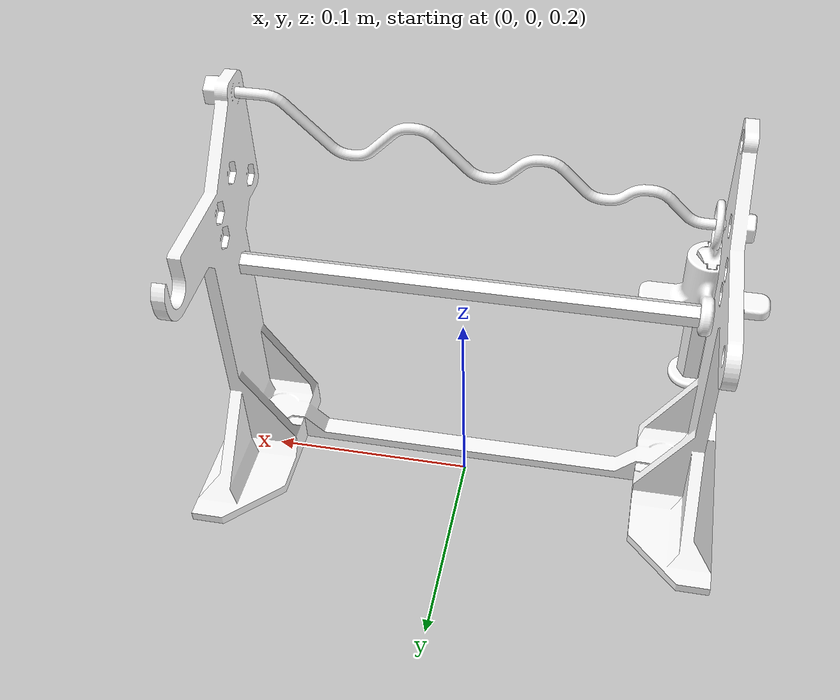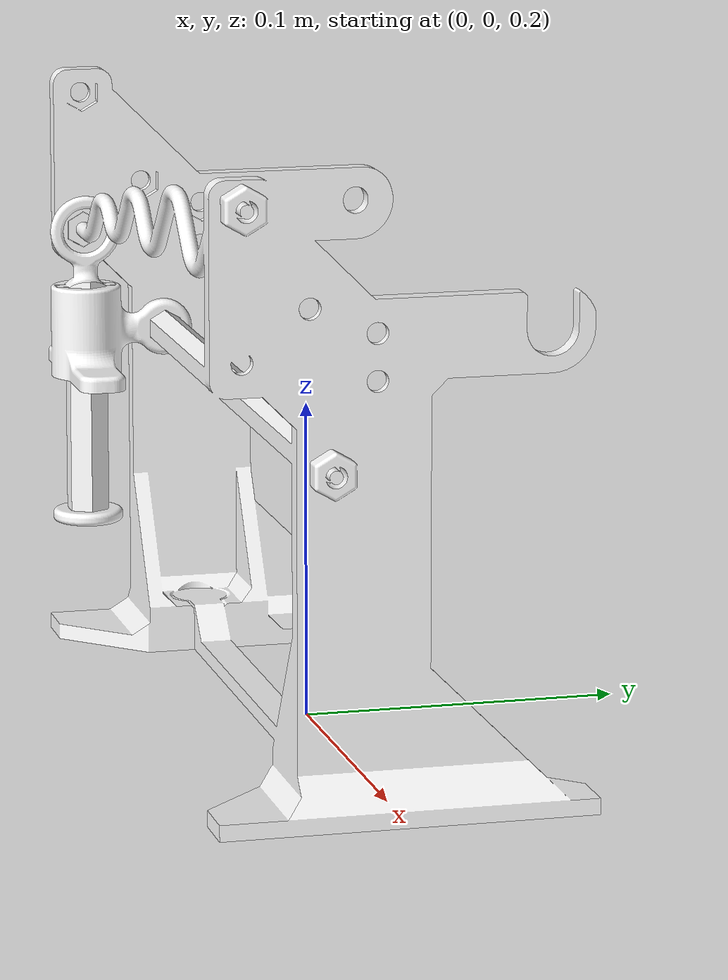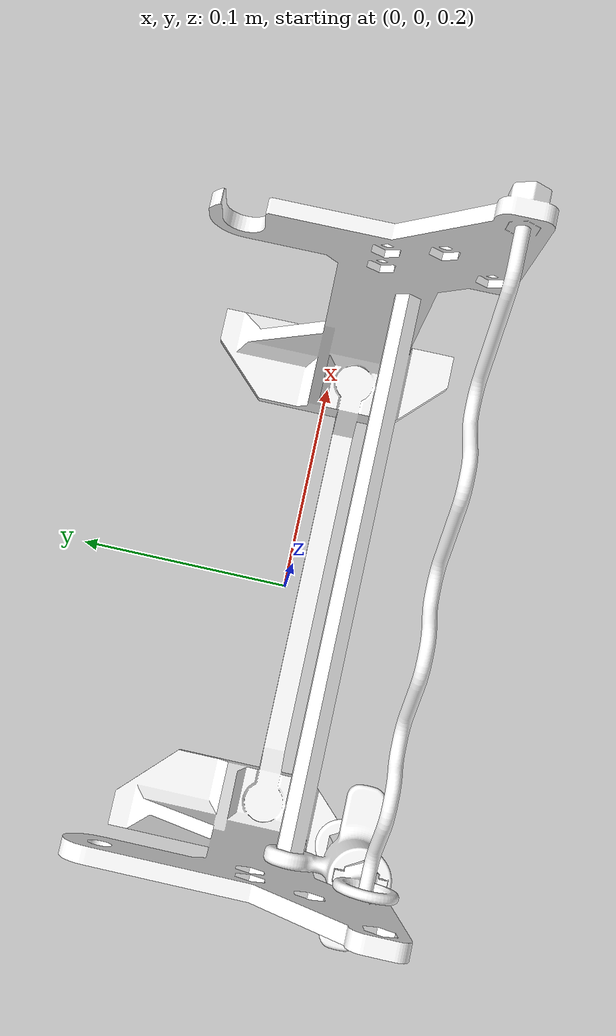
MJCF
<mujoco model="H3_Squeeze">

  <asset>
    <mesh name="i11_horizontal_base" file="i11_horizontal_base.stl" scale="1 1 1"/>
    <mesh name="i11_traj_convex_part_0" file="i11_traj_decomposed_meshes/i11_traj_convex_part_0.obj" scale="1 1 1"/>
    <mesh name="i11_traj_convex_part_1" file="i11_traj_decomposed_meshes/i11_traj_convex_part_1.obj" scale="1 1 1"/>
    <mesh name="i11_traj_convex_part_2" file="i11_traj_decomposed_meshes/i11_traj_convex_part_2.obj" scale="1 1 1"/>
    <mesh name="i11_traj_convex_part_3" file="i11_traj_decomposed_meshes/i11_traj_convex_part_3.obj" scale="1 1 1"/>
    <mesh name="i11_traj_convex_part_4" file="i11_traj_decomposed_meshes/i11_traj_convex_part_4.obj" scale="1 1 1"/>
    <mesh name="i11_traj_convex_part_5" file="i11_traj_decomposed_meshes/i11_traj_convex_part_5.obj" scale="1 1 1"/>
    <mesh name="i11_traj_convex_part_6" file="i11_traj_decomposed_meshes/i11_traj_convex_part_6.obj" scale="1 1 1"/>
    <mesh name="i11_traj_convex_part_7" file="i11_traj_decomposed_meshes/i11_traj_convex_part_7.obj" scale="1 1 1"/>
    <mesh name="i11_traj_convex_part_8" file="i11_traj_decomposed_meshes/i11_traj_convex_part_8.obj" scale="1 1 1"/>
    <mesh name="i11_traj_convex_part_9" file="i11_traj_decomposed_meshes/i11_traj_convex_part_9.obj" scale="1 1 1"/>
    <mesh name="i11_traj_convex_part_10" file="i11_traj_decomposed_meshes/i11_traj_convex_part_10.obj" scale="1 1 1"/>
    <mesh name="i11_traj_convex_part_11" file="i11_traj_decomposed_meshes/i11_traj_convex_part_11.obj" scale="1 1 1"/>
    <mesh name="i11_traj_convex_part_12" file="i11_traj_decomposed_meshes/i11_traj_convex_part_12.obj" scale="1 1 1"/>
    <mesh name="i11_traj_convex_part_13" file="i11_traj_decomposed_meshes/i11_traj_convex_part_13.obj" scale="1 1 1"/>
    <mesh name="i11_traj_convex_part_14" file="i11_traj_decomposed_meshes/i11_traj_convex_part_14.obj" scale="1 1 1"/>
    <mesh name="i11_traj_convex_part_15" file="i11_traj_decomposed_meshes/i11_traj_convex_part_15.obj" scale="1 1 1"/>
    <mesh name="i11_traj_convex_part_16" file="i11_traj_decomposed_meshes/i11_traj_convex_part_16.obj" scale="1 1 1"/>
    <mesh name="i11_traj_convex_part_17" file="i11_traj_decomposed_meshes/i11_traj_convex_part_17.obj" scale="1 1 1"/>
    <mesh name="i11_traj_convex_part_18" file="i11_traj_decomposed_meshes/i11_traj_convex_part_18.obj" scale="1 1 1"/>

    <mesh name="syringe_barrier" file="syringe_barrier.stl" scale="1 1 1"/>
    <mesh name="syringe_rod" file="syringe_rod.stl" scale="1 1 1"/>

    <mesh name="i11_ring_convex_part_0" file="i11_ring_decomposed_meshes/i11_ring_convex_part_0.obj" scale="1 1 1"/>
    <mesh name="i11_ring_convex_part_1" file="i11_ring_decomposed_meshes/i11_ring_convex_part_1.obj" scale="1 1 1"/>
    <mesh name="i11_ring_convex_part_2" file="i11_ring_decomposed_meshes/i11_ring_convex_part_2.obj" scale="1 1 1"/>
    <mesh name="i11_ring_convex_part_3" file="i11_ring_decomposed_meshes/i11_ring_convex_part_3.obj" scale="1 1 1"/>
    <mesh name="i11_ring_convex_part_4" file="i11_ring_decomposed_meshes/i11_ring_convex_part_4.obj" scale="1 1 1"/>
    <mesh name="i11_ring_convex_part_5" file="i11_ring_decomposed_meshes/i11_ring_convex_part_5.obj" scale="1 1 1"/>
    <mesh name="i11_ring_convex_part_6" file="i11_ring_decomposed_meshes/i11_ring_convex_part_6.obj" scale="1 1 1"/>
    <mesh name="i11_ring_convex_part_7" file="i11_ring_decomposed_meshes/i11_ring_convex_part_7.obj" scale="1 1 1"/>
    <mesh name="i11_ring_convex_part_8" file="i11_ring_decomposed_meshes/i11_ring_convex_part_8.obj" scale="1 1 1"/>
    <mesh name="i11_ring_convex_part_9" file="i11_ring_decomposed_meshes/i11_ring_convex_part_9.obj" scale="1 1 1"/>
    <mesh name="i11_ring_convex_part_10" file="i11_ring_decomposed_meshes/i11_ring_convex_part_10.obj" scale="1 1 1"/>
    <mesh name="i11_ring_convex_part_11" file="i11_ring_decomposed_meshes/i11_ring_convex_part_11.obj" scale="1 1 1"/>
    <mesh name="i11_ring_convex_part_12" file="i11_ring_decomposed_meshes/i11_ring_convex_part_12.obj" scale="1 1 1"/>
    <mesh name="i11_ring_convex_part_13" file="i11_ring_decomposed_meshes/i11_ring_convex_part_13.obj" scale="1 1 1"/>
    <mesh name="i11_ring_convex_part_14" file="i11_ring_decomposed_meshes/i11_ring_convex_part_14.obj" scale="1 1 1"/>
    <mesh name="i11_ring_convex_part_15" file="i11_ring_decomposed_meshes/i11_ring_convex_part_15.obj" scale="1 1 1"/>
    <mesh name="i11_ring_convex_part_16" file="i11_ring_decomposed_meshes/i11_ring_convex_part_16.obj" scale="1 1 1"/>
    <mesh name="i11_ring_convex_part_17" file="i11_ring_decomposed_meshes/i11_ring_convex_part_17.obj" scale="1 1 1"/>
    <mesh name="i11_ring_convex_part_18" file="i11_ring_decomposed_meshes/i11_ring_convex_part_18.obj" scale="1 1 1"/>
    <mesh name="i11_ring_convex_part_19" file="i11_ring_decomposed_meshes/i11_ring_convex_part_19.obj" scale="1 1 1"/>
    <mesh name="i11_ring_convex_part_20" file="i11_ring_decomposed_meshes/i11_ring_convex_part_20.obj" scale="1 1 1"/>
    <mesh name="i11_ring_convex_part_21" file="i11_ring_decomposed_meshes/i11_ring_convex_part_21.obj" scale="1 1 1"/>
    <mesh name="i11_ring_convex_part_22" file="i11_ring_decomposed_meshes/i11_ring_convex_part_22.obj" scale="1 1 1"/>
    <mesh name="i11_ring_convex_part_23" file="i11_ring_decomposed_meshes/i11_ring_convex_part_23.obj" scale="1 1 1"/>
    <mesh name="i11_ring_convex_part_24" file="i11_ring_decomposed_meshes/i11_ring_convex_part_24.obj" scale="1 1 1"/>
    <mesh name="i11_ring_convex_part_25" file="i11_ring_decomposed_meshes/i11_ring_convex_part_25.obj" scale="1 1 1"/>
    <mesh name="i11_ring_convex_part_26" file="i11_ring_decomposed_meshes/i11_ring_convex_part_26.obj" scale="1 1 1"/>
    <mesh name="i11_ring_convex_part_27" file="i11_ring_decomposed_meshes/i11_ring_convex_part_27.obj" scale="1 1 1"/>
    <mesh name="i11_ring_convex_part_28" file="i11_ring_decomposed_meshes/i11_ring_convex_part_28.obj" scale="1 1 1"/>
    <mesh name="i11_ring_convex_part_29" file="i11_ring_decomposed_meshes/i11_ring_convex_part_29.obj" scale="1 1 1"/>
    <mesh name="i11_ring_convex_part_30" file="i11_ring_decomposed_meshes/i11_ring_convex_part_30.obj" scale="1 1 1"/>
    <mesh name="i11_ring_convex_part_31" file="i11_ring_decomposed_meshes/i11_ring_convex_part_31.obj" scale="1 1 1"/>
    <mesh name="i11_ring_convex_part_32" file="i11_ring_decomposed_meshes/i11_ring_convex_part_32.obj" scale="1 1 1"/>
    <mesh name="i11_ring_convex_part_33" file="i11_ring_decomposed_meshes/i11_ring_convex_part_33.obj" scale="1 1 1"/>
    <mesh name="i11_ring_convex_part_34" file="i11_ring_decomposed_meshes/i11_ring_convex_part_34.obj" scale="1 1 1"/>

    <material name="object_material" rgba="1 1 1 1" shininess="0.3"/>
  </asset>

  <default>
    <default class="visual">
      <geom contype="0" conaffinity="0" group="2"/>
    </default>
    <default class="collision">
      <geom group="3"/>
    </default>
  </default>

  <worldbody>
    <body name="i11_horizontal_base_body" pos="0 0 0.2">
      <geom name="i11_horizontal_base" type="mesh" mesh="i11_horizontal_base" material="object_material" mass="1" class="visual"/>
      <geom type="box" size="0.003 0.020 0.0775" pos="-0.1155 -0.0118 0.0775" density="248" class="collision"/>
      <geom type="box" size="0.003 0.020 0.0775" pos="0.1155 -0.0118 0.0775" density="248" class="collision"/>
      <geom name="i11_traj_convex_part_0" type="mesh" mesh="i11_traj_convex_part_0" class="collision" solref="0.002 1" friction="3 0.1 0.1"/>
      <geom name="i11_traj_convex_part_1" type="mesh" mesh="i11_traj_convex_part_1" class="collision" solref="0.002 1" friction="3 0.1 0.1"/>
      <geom name="i11_traj_convex_part_2" type="mesh" mesh="i11_traj_convex_part_2" class="collision" solref="0.002 1" friction="3 0.1 0.1"/>
      <geom name="i11_traj_convex_part_3" type="mesh" mesh="i11_traj_convex_part_3" class="collision" solref="0.002 1" friction="3 0.1 0.1"/>
      <geom name="i11_traj_convex_part_4" type="mesh" mesh="i11_traj_convex_part_4" class="collision" solref="0.002 1" friction="3 0.1 0.1"/>
      <geom name="i11_traj_convex_part_5" type="mesh" mesh="i11_traj_convex_part_5" class="collision" solref="0.002 1" friction="3 0.1 0.1"/>
      <geom name="i11_traj_convex_part_6" type="mesh" mesh="i11_traj_convex_part_6" class="collision" solref="0.002 1" friction="3 0.1 0.1"/>
      <geom name="i11_traj_convex_part_7" type="mesh" mesh="i11_traj_convex_part_7" class="collision" solref="0.002 1" friction="3 0.1 0.1"/>
      <geom name="i11_traj_convex_part_8" type="mesh" mesh="i11_traj_convex_part_8" class="collision" solref="0.002 1" friction="3 0.1 0.1"/>
      <geom name="i11_traj_convex_part_9" type="mesh" mesh="i11_traj_convex_part_9" class="collision" solref="0.002 1" friction="3 0.1 0.1"/>
      <geom name="i11_traj_convex_part_10" type="mesh" mesh="i11_traj_convex_part_10" class="collision" solref="0.002 1" friction="3 0.1 0.1"/>
      <geom name="i11_traj_convex_part_11" type="mesh" mesh="i11_traj_convex_part_11" class="collision" solref="0.002 1" friction="3 0.1 0.1"/>
      <geom name="i11_traj_convex_part_12" type="mesh" mesh="i11_traj_convex_part_12" class="collision" solref="0.002 1" friction="3 0.1 0.1"/>
      <geom name="i11_traj_convex_part_13" type="mesh" mesh="i11_traj_convex_part_13" class="collision" solref="0.002 1" friction="3 0.1 0.1"/>
      <geom name="i11_traj_convex_part_14" type="mesh" mesh="i11_traj_convex_part_14" class="collision" solref="0.002 1" friction="3 0.1 0.1"/>
      <geom name="i11_traj_convex_part_15" type="mesh" mesh="i11_traj_convex_part_15" class="collision" solref="0.002 1" friction="3 0.1 0.1"/>
      <geom name="i11_traj_convex_part_16" type="mesh" mesh="i11_traj_convex_part_16" class="collision" solref="0.002 1" friction="3 0.1 0.1"/>
      <geom name="i11_traj_convex_part_17" type="mesh" mesh="i11_traj_convex_part_17" class="collision" solref="0.002 1" friction="3 0.1 0.1"/>
      <geom name="i11_traj_convex_part_18" type="mesh" mesh="i11_traj_convex_part_18" class="collision" solref="0.002 1" friction="3 0.1 0.1"/>
    </body>

    <body name="syringe_body" pos="-0.1095 -0.0478 0.29">
      <joint name="syringe_slide" type="slide" axis="1 0 0" range="0 0.219" damping="0.05"/>
      <geom name="syringe_barrier" type="mesh" mesh="syringe_barrier" material="object_material" class="visual"/>
      <geom type="cylinder" size="0.0092 0.003" quat="0.7071068 0 0.7071068 0" pos="0 0.026 0.015" density="248" class="collision" solref="0.002 1"/>
      <geom type="cylinder" size="0.0115 0.015" pos="0 0 0.015" density="248" class="collision"/>
      <geom type="box" size="0.0315 0.0075 0.0025" pos="0 0 0.0025" density="248" class="collision"/>
      <body name="rod_body" pos="0 0 0">
        <joint name="rod_slide" type="slide" axis="0 0 1" range="0 0.045" damping="0.05"/>
        <geom name="syringe_rod" type="mesh" mesh="syringe_rod" material="object_material" class="visual"/>
        <geom type="cylinder" size="0.00625 0.0375" pos="0 0 -0.0075" density="248" class="collision"/>
        <geom type="cylinder" size="0.0115 0.002" pos="0 0 -0.047" density="248" class="collision"/>
        <geom name="i11_ring_convex_part_0" type="mesh" mesh="i11_ring_convex_part_0" pos="0 0 0.048" density="248" class="collision" friction="3 0.1 0.1"/>
        <geom name="i11_ring_convex_part_1" type="mesh" mesh="i11_ring_convex_part_1" pos="0 0 0.048" density="248" class="collision" friction="3 0.1 0.1"/>
        <geom name="i11_ring_convex_part_2" type="mesh" mesh="i11_ring_convex_part_2" pos="0 0 0.048" density="248" class="collision" friction="3 0.1 0.1"/>
        <geom name="i11_ring_convex_part_3" type="mesh" mesh="i11_ring_convex_part_3" pos="0 0 0.048" density="248" class="collision" friction="3 0.1 0.1"/>
        <geom name="i11_ring_convex_part_4" type="mesh" mesh="i11_ring_convex_part_4" pos="0 0 0.048" density="248" class="collision" friction="3 0.1 0.1"/>
        <geom name="i11_ring_convex_part_5" type="mesh" mesh="i11_ring_convex_part_5" pos="0 0 0.048" density="248" class="collision" friction="3 0.1 0.1"/>
        <geom name="i11_ring_convex_part_6" type="mesh" mesh="i11_ring_convex_part_6" pos="0 0 0.048" density="248" class="collision" friction="3 0.1 0.1"/>
        <geom name="i11_ring_convex_part_7" type="mesh" mesh="i11_ring_convex_part_7" pos="0 0 0.048" density="248" class="collision" friction="3 0.1 0.1"/>
        <geom name="i11_ring_convex_part_8" type="mesh" mesh="i11_ring_convex_part_8" pos="0 0 0.048" density="248" class="collision" friction="3 0.1 0.1"/>
        <geom name="i11_ring_convex_part_9" type="mesh" mesh="i11_ring_convex_part_9" pos="0 0 0.048" density="248" class="collision" friction="3 0.1 0.1"/>
        <geom name="i11_ring_convex_part_10" type="mesh" mesh="i11_ring_convex_part_10" pos="0 0 0.048" density="248" class="collision" friction="3 0.1 0.1"/>
        <geom name="i11_ring_convex_part_11" type="mesh" mesh="i11_ring_convex_part_11" pos="0 0 0.048" density="248" class="collision" friction="3 0.1 0.1"/>
        <geom name="i11_ring_convex_part_12" type="mesh" mesh="i11_ring_convex_part_12" pos="0 0 0.048" density="248" class="collision" friction="3 0.1 0.1"/>
        <geom name="i11_ring_convex_part_13" type="mesh" mesh="i11_ring_convex_part_13" pos="0 0 0.048" density="248" class="collision" friction="3 0.1 0.1"/>
        <geom name="i11_ring_convex_part_14" type="mesh" mesh="i11_ring_convex_part_14" pos="0 0 0.048" density="248" class="collision" friction="3 0.1 0.1"/>
        <geom name="i11_ring_convex_part_15" type="mesh" mesh="i11_ring_convex_part_15" pos="0 0 0.048" density="248" class="collision" friction="3 0.1 0.1"/>
        <geom name="i11_ring_convex_part_16" type="mesh" mesh="i11_ring_convex_part_16" pos="0 0 0.048" density="248" class="collision" friction="3 0.1 0.1"/>
        <geom name="i11_ring_convex_part_17" type="mesh" mesh="i11_ring_convex_part_17" pos="0 0 0.048" density="248" class="collision" friction="3 0.1 0.1"/>
        <geom name="i11_ring_convex_part_18" type="mesh" mesh="i11_ring_convex_part_18" pos="0 0 0.048" density="248" class="collision" friction="3 0.1 0.1"/>
        <geom name="i11_ring_convex_part_19" type="mesh" mesh="i11_ring_convex_part_19" pos="0 0 0.048" density="248" class="collision" friction="3 0.1 0.1"/>
        <geom name="i11_ring_convex_part_20" type="mesh" mesh="i11_ring_convex_part_20" pos="0 0 0.048" density="248" class="collision" friction="3 0.1 0.1"/>
        <geom name="i11_ring_convex_part_21" type="mesh" mesh="i11_ring_convex_part_21" pos="0 0 0.048" density="248" class="collision" friction="3 0.1 0.1"/>
        <geom name="i11_ring_convex_part_22" type="mesh" mesh="i11_ring_convex_part_22" pos="0 0 0.048" density="248" class="collision" friction="3 0.1 0.1"/>
        <geom name="i11_ring_convex_part_23" type="mesh" mesh="i11_ring_convex_part_23" pos="0 0 0.048" density="248" class="collision" friction="3 0.1 0.1"/>
        <geom name="i11_ring_convex_part_24" type="mesh" mesh="i11_ring_convex_part_24" pos="0 0 0.048" density="248" class="collision" friction="3 0.1 0.1"/>
        <geom name="i11_ring_convex_part_25" type="mesh" mesh="i11_ring_convex_part_25" pos="0 0 0.048" density="248" class="collision" friction="3 0.1 0.1"/>
        <geom name="i11_ring_convex_part_26" type="mesh" mesh="i11_ring_convex_part_26" pos="0 0 0.048" density="248" class="collision" friction="3 0.1 0.1"/>
        <geom name="i11_ring_convex_part_27" type="mesh" mesh="i11_ring_convex_part_27" pos="0 0 0.048" density="248" class="collision" friction="3 0.1 0.1"/>
        <geom name="i11_ring_convex_part_28" type="mesh" mesh="i11_ring_convex_part_28" pos="0 0 0.048" density="248" class="collision" friction="3 0.1 0.1"/>
        <geom name="i11_ring_convex_part_29" type="mesh" mesh="i11_ring_convex_part_29" pos="0 0 0.048" density="248" class="collision" friction="3 0.1 0.1"/>
        <geom name="i11_ring_convex_part_30" type="mesh" mesh="i11_ring_convex_part_30" pos="0 0 0.048" density="248" class="collision" friction="3 0.1 0.1"/>
        <geom name="i11_ring_convex_part_31" type="mesh" mesh="i11_ring_convex_part_31" pos="0 0 0.048" density="248" class="collision" friction="3 0.1 0.1"/>
        <geom name="i11_ring_convex_part_32" type="mesh" mesh="i11_ring_convex_part_32" pos="0 0 0.048" density="248" class="collision" friction="3 0.1 0.1"/>
        <geom name="i11_ring_convex_part_33" type="mesh" mesh="i11_ring_convex_part_33" pos="0 0 0.048" density="248" class="collision" friction="3 0.1 0.1"/>
        <geom name="i11_ring_convex_part_34" type="mesh" mesh="i11_ring_convex_part_34" pos="0 0 0.048" density="248" class="collision" friction="3 0.1 0.1"/>
      </body>

    </body>

  </worldbody>
</mujoco>
